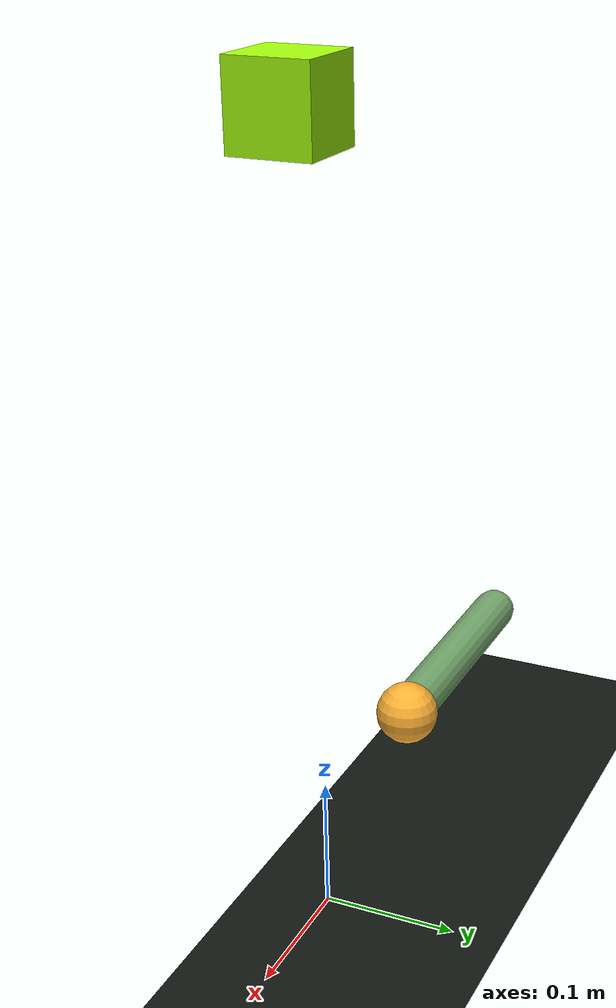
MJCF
<mujoco model="first_robotics_playground">
  <compiler angle="radian"/>
  <option timestep="0.002" gravity="0 0 -9.81"/>
  <visual><global offwidth="640" offheight="480"/></visual>
  <default><geom friction="0.6 0.005 0.0001"/></default>
  <worldbody>
    <light pos="0 -1 2" dir="0 0 -1"/>
    <camera name="overview" pos="0.9 -1.2 0.9" xyaxes="0.8 0.6 0 -0.3 0.4 0.866"/>
    <geom name="floor" type="plane" size="1 1 0.1" rgba="0.07 0.09 0.07 1"/>
    <body name="cube" pos="0.12 0.05 0.6">
      <freejoint name="cube_free"/>
      <geom name="cube_geom" type="box" size="0.025 0.025 0.025" mass="0.05" rgba="0.65 1 0.05 1"/>
    </body>
    <body name="arm" pos="-0.35 0 0.08">
      <joint name="pan" type="hinge" axis="0 0 1" range="-1.5 1.5" damping="1"/>
      <geom name="arm_geom" type="capsule" fromto="0 0 0 0.20 0 0" size="0.018" mass="0.20" rgba="0.45 0.65 0.42 1"/>
      <site name="tip" pos="0.20 0 0" size="0.025" rgba="1 0.7 0.2 1"/>
    </body>
  </worldbody>
  <actuator><position name="pan_target" joint="pan" kp="25" ctrlrange="-1.5 1.5"/></actuator>
</mujoco>
